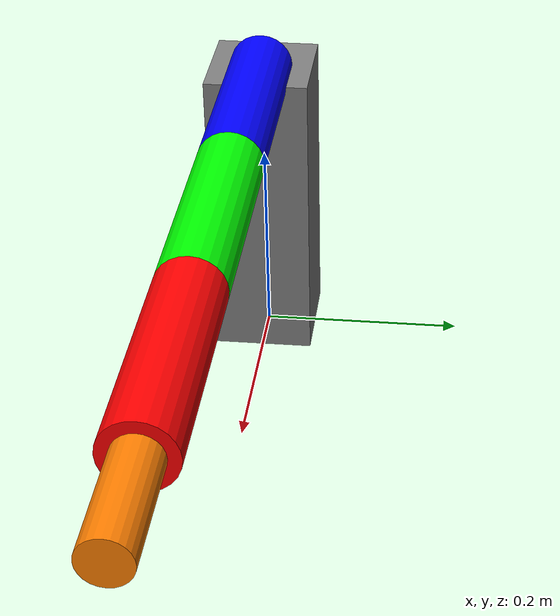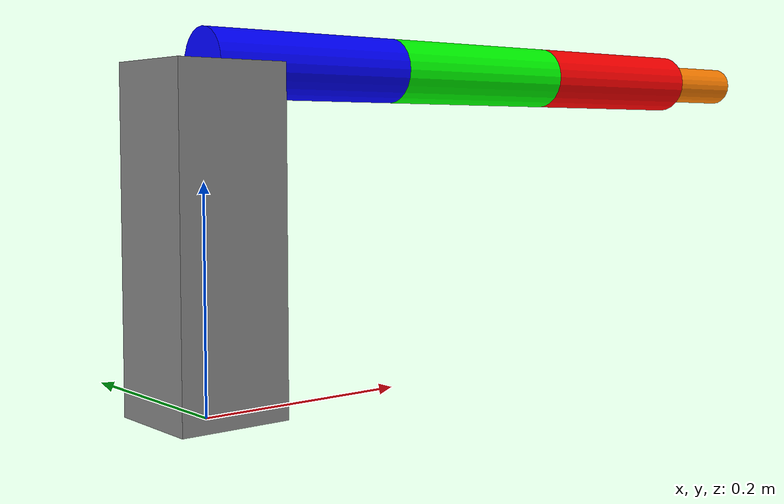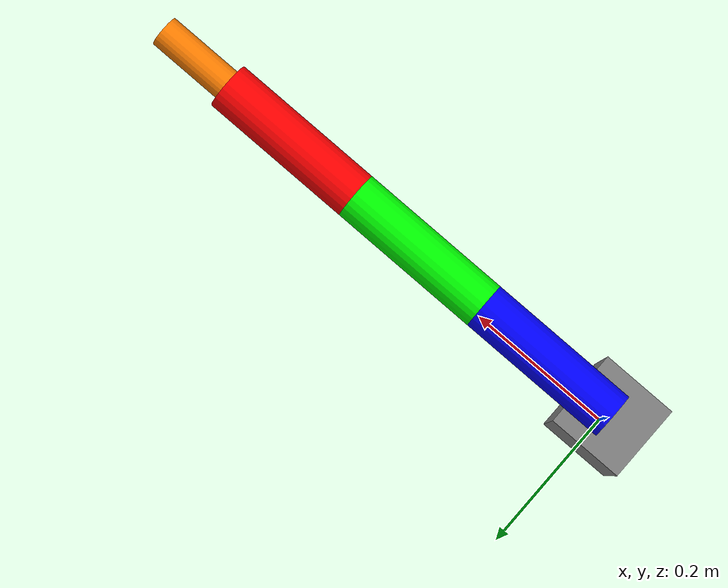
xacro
<?xml version="1.0"?>
<robot name="my_robot_base" xmlns:xacro="http://www.ros.org/wiki/xacro">
    <xacro:include filename="$(find my_robot_urdf)/urdf/base.urdf.xacro" />
    <xacro:include filename="$(find my_robot_urdf)/urdf/my_control.urdf.xacro" />

</robot>

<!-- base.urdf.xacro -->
<robot xmlns:xacro="http://wiki.ros.org/xacro">
  <!-- 1. 常量定义（方便后续修改尺寸） -->
  <xacro:property name="base_length" value="0.1" />    <!-- 底座尺寸 -->
  <xacro:property name="base_height" value="0.3" />    <!-- 底座尺寸 -->
  <xacro:property name="link_length" value="0.2" />    <!-- 关节连杆长度 -->
  <xacro:property name="link_radius" value="0.03" />   <!-- 关节连杆半径 -->
  <xacro:property name="gripper_length" value="0.1" /> <!-- 夹爪长度 -->
  <xacro:property name="gripper_radius" value="0.02" /><!-- 夹爪半径 -->
  <xacro:property name="joint_limit" value="${pi/2}" />   <!-- 关节角度限制（±90°） -->
  <xacro:property name="gripper_limit" value="0.6" />  <!-- 夹爪开合角度限制（0~0.6rad≈34°） -->

  <!-- 2. 机械结构定义（底座+3关节+夹爪，含视觉/碰撞/惯性） -->
  <link name="map">
    <origin xyz="0 0 0" rpy="0 0 0" />
  </link>

  <joint name="map_joint" type="fixed">
    <parent link="map" />
    <child link="base_link" />
    <origin xyz="0 0 0" rpy="0 0 0" />
  </joint>
  <!-- 2.1 底座连杆（base_link） -->
  <link name="base_link">
    <!-- 视觉模型（灰色立方体） -->
    <visual>
      <origin xyz="0 0 ${base_height/2}" rpy="0 0 0" />
      <geometry>
        <box size="${base_length} ${base_length} ${base_height}" />
      </geometry>
      <material name="gray">
        <color rgba="0.5 0.5 0.5 1" />
      </material>
    </visual>
    <!-- 碰撞模型（与视觉模型一致，用于碰撞检测） -->
    <collision>
      <geometry>
        <box size="${base_length} ${base_length} ${base_height}" />
      </geometry>
    </collision>
    <!-- 惯性模型（影响动力学仿真） -->
    <inertial>
      <mass value="1.0" />
      <inertia ixx="0.01" ixy="0.0" ixz="0.0" iyy="0.01" iyz="0.0" izz="0.01" />
    </inertial>
  </link>

  <!-- 2.2 关节1 + 连杆1 -->
  <joint name="joint1" type="revolute">
    <parent link="base_link" />
    <child link="link1" />
    <origin xyz="0 0 ${base_height}" rpy="0 0 0" /> <!-- 关节1安装在底座顶部中心 -->
    <axis xyz="0 0 1" /> <!-- 绕Z轴旋转（水平转动） -->
    <limit lower="-${pi}" upper="${pi}" effort="100" velocity="1.0" />
  </joint>
  <link name="link1">
    <visual>
      <origin xyz="${link_length/2} 0 0" rpy="0 ${pi/2} 0" /> <!-- 圆柱体沿X轴摆放 -->
      <geometry>
        <cylinder length="${link_length}" radius="${link_radius}" />
      </geometry>
      <material name="blue">
        <color rgba="0 0 1 1" />
      </material>
    </visual>
    <collision>
      <origin xyz="${link_length/2} 0 0" rpy="0 ${pi/2} 0" />
      <geometry>
        <cylinder length="${link_length}" radius="${link_radius}" />
      </geometry>
    </collision>
    <inertial>
      <mass value="0.5" />
      <inertia ixx="0.01" ixy="0.0" ixz="0.0" iyy="0.01" iyz="0.0" izz="0.01" />
    </inertial>
  </link>

  <!-- 2.3 关节2 + 连杆2 -->
  <joint name="joint2" type="revolute">
    <parent link="link1" />
    <child link="link2" />
    <origin xyz="${link_length} 0 0" rpy="0 0 0" /> <!-- 关节2安装在连杆1末端 -->
    <axis xyz="0 1 0" /> <!-- 绕Y轴旋转（上下摆动） -->
    <limit lower="-${joint_limit}" upper="${joint_limit}" effort="100" velocity="1.0" />
  </joint>
  <link name="link2">
    <visual>
      <origin xyz="${link_length/2} 0 0" rpy="0 ${pi/2} 0" />
      <geometry>
        <cylinder length="${link_length}" radius="${link_radius}" />
      </geometry>
      <material name="green">
        <color rgba="0 1 0 1" />
      </material>
    </visual>
    <collision>
      <origin xyz="${link_length/2} 0 0" rpy="0 ${pi/2} 0" />
      <geometry>
        <cylinder length="${link_length}" radius="${link_radius}" />
      </geometry>
    </collision>
    <inertial>
      <mass value="0.5" />
      <inertia ixx="0.01" ixy="0.0" ixz="0.0" iyy="0.01" iyz="0.0" izz="0.01" />
    </inertial>
  </link>

  <!-- 2.4 关节3 + 连杆3 -->
  <joint name="joint3" type="revolute">
    <parent link="link2" />
    <child link="link3" />
    <origin xyz="${link_length} 0 0" rpy="0 0 0" /> <!-- 关节3安装在连杆2末端 -->
    <axis xyz="0 1 0" /> <!-- 绕Y轴旋转（上下摆动，与关节2协同调整姿态） -->
    <limit lower="-${joint_limit}" upper="${joint_limit}" effort="100" velocity="1.0" />
  </joint>
  <link name="link3">
    <visual>
      <origin xyz="${link_length/2} 0 0" rpy="0 ${pi/2} 0" />
      <geometry>
        <cylinder length="${link_length}" radius="${link_radius}" />
      </geometry>
      <material name="red">
        <color rgba="1 0 0 1" />
      </material>
    </visual>
    <collision>
      <origin xyz="${link_length/2} 0 0" rpy="0 ${pi/2} 0" />
      <geometry>
        <cylinder length="${link_length}" radius="${link_radius}" />
      </geometry>
    </collision>
    <inertial>
      <mass value="0.3" />
      <inertia ixx="0.005" ixy="0.0" ixz="0.0" iyy="0.005" iyz="0.0" izz="0.005" />
    </inertial>
  </link>

  <!-- 2.5 夹爪关节 + 夹爪连杆（两指简化为单指，核心是控制接口） -->
  <joint name="gripper_joint" type="revolute">
    <parent link="link3" />
    <child link="gripper_link" />
    <origin xyz="${link_length} 0 0" rpy="0 0 0" /> <!-- 夹爪安装在连杆3末端 -->
    <axis xyz="0 1 0" /> <!-- 绕Y轴旋转（实现开合） -->
    <limit lower="0.0" upper="${gripper_limit}" effort="50" velocity="0.3" /> <!-- 开合角度限制 -->
  </joint>
  <link name="gripper_link">
    <visual>
      <origin xyz="${gripper_length/2} 0 0" rpy="0 ${pi/2} 0" />
      <geometry>
        <cylinder length="${gripper_length}" radius="${gripper_radius}" />
      </geometry>
      <material name="orange">
        <color rgba="1 0.5 0 1" />
      </material>
    </visual>
    <collision>
      <origin xyz="${gripper_length/2} 0 0" rpy="0 ${pi/2} 0" />
      <geometry>
        <cylinder length="${gripper_length}" radius="${gripper_radius}" />
      </geometry>
    </collision>
    <inertial>
      <mass value="0.1" /> <!-- 夹爪质量较轻 -->
      <inertia ixx="0.001" ixy="0.0" ixz="0.0" iyy="0.001" iyz="0.0" izz="0.001" />
    </inertial>
  </link>

  <!-- 在你的URDF机械结构定义部分添加 -->
  <link name="gpio_estop_link">
    <!-- 这是一个虚拟连杆，不需要物理外观 -->
    <visual>
      <geometry>
        <box size="0.01 0.01 0.01" /> <!-- 一个极小的立方体，几乎不可见 -->
      </geometry>
      <material name="transparent">
        <color rgba="0 0 0 0" /> <!-- 完全透明 -->
      </material>
    </visual>
  </link>

  <joint name="gpio_estop" type="revolute">
    <parent link="base_link" />
    <child link="gpio_estop_link" />
    <origin xyz="0 0 0" rpy="0 0 0" />
    <axis xyz="0 1 0" /> <!-- 绕Y轴旋转（上下摆动，与关节2协同调整姿态） -->
    <limit lower="-${joint_limit}" upper="${joint_limit}" effort="100" velocity="1.0" />
  </joint>

</robot>
